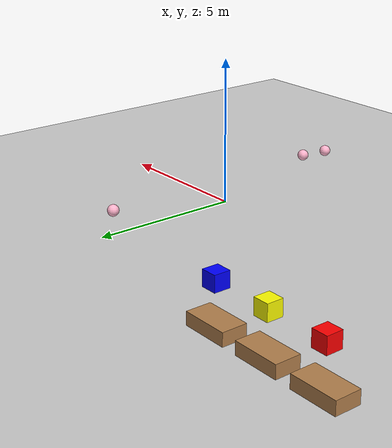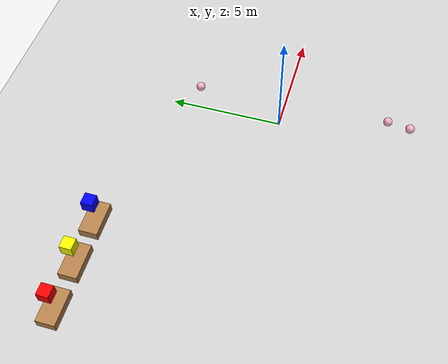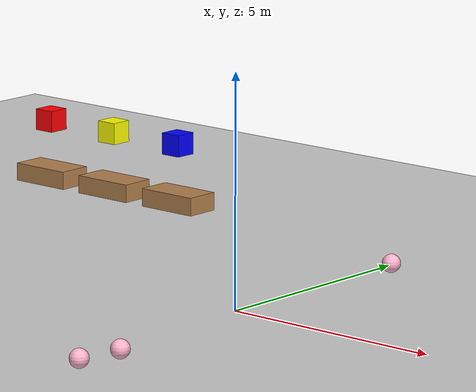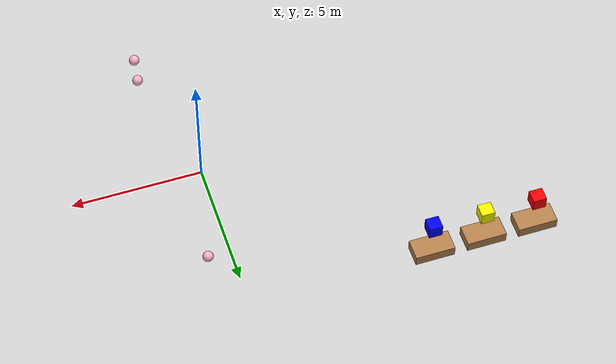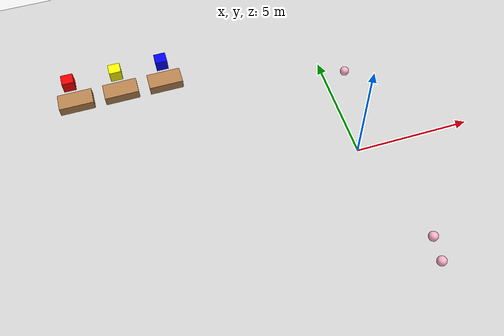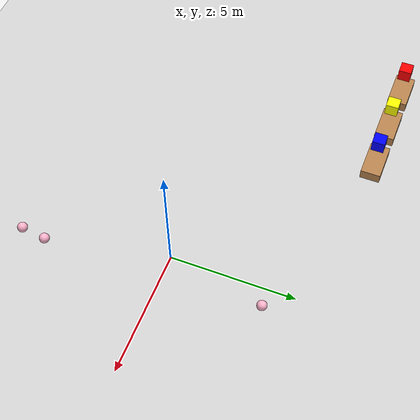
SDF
<?xml version="1.0"?>
<sdf version="1.8">
  <world name="sample_world">

    <!-- Physics settings -->
    <physics name="1ms" type="ode">
      <max_step_size>0.001</max_step_size>
      <real_time_factor>1.0</real_time_factor>
    </physics>

    <!-- Plugin for ROS integration -->
    <plugin filename="gz-sim-physics-system" name="gz::sim::systems::Physics"></plugin>
    <plugin filename="gz-sim-user-commands-system" name="gz::sim::systems::UserCommands"></plugin>
    <plugin filename="gz-sim-scene-broadcaster-system" name="gz::sim::systems::SceneBroadcaster"></plugin>
    <plugin filename="gz-sim-contact-system" name="gz::sim::systems::Contact"></plugin>

    <!-- Sun -->
    <light type="directional" name="sun">
      <cast_shadows>true</cast_shadows>
      <pose>0 0 10 0 0 0</pose>
      <diffuse>0.8 0.8 0.8 1</diffuse>
      <specular>0.2 0.2 0.2 1</specular>
      <attenuation>
        <range>1000</range>
        <constant>0.9</constant>
        <linear>0.01</linear>
        <quadratic>0.001</quadratic>
      </attenuation>
      <direction>-0.5 0.1 -0.9</direction>
    </light>

    <!-- Ground Plane -->
    <model name="ground_plane">
      <static>true</static>
      <link name="link">
        <collision name="collision">
          <geometry>
            <plane>
              <normal>0 0 1</normal>
              <size>100 100</size>
            </plane>
          </geometry>
        </collision>
        <visual name="visual">
          <geometry>
            <plane>
              <normal>0 0 1</normal>
              <size>100 100</size>
            </plane>
          </geometry>
          <material>
            <ambient>0.8 0.8 0.8 1</ambient>
            <diffuse>0.8 0.8 0.8 1</diffuse>
            <specular>0.8 0.8 0.8 1</specular>
          </material>
        </visual>
      </link>
    </model>

    <!-- Tables with boxes -->
    <model name="table_1">
      <static>true</static>
      <pose>-11 6 0 0 0 0</pose>
      <link name="link">
        <collision name="collision">
          <geometry>
            <box>
              <size>1.5 0.8 0.8</size>
            </box>
          </geometry>
        </collision>
        <visual name="visual">
          <geometry>
            <box>
              <size>1.5 0.8 0.8</size>
            </box>
          </geometry>
          <material>
            <ambient>0.7 0.5 0.3 1</ambient>
            <diffuse>0.7 0.5 0.3 1</diffuse>
          </material>
        </visual>
      </link>
    </model>

    <model name="red_box">
      <pose>-11 6 1.5 0 0 0</pose>
      <link name="link">
        <collision name="collision">
          <geometry>
            <box>
              <size>0.5 0.5 0.5</size>
            </box>
          </geometry>
        </collision>
        <visual name="visual">
          <geometry>
            <box>
              <size>0.5 0.5 0.5</size>
            </box>
          </geometry>
          <material>
            <ambient>1 0 0 1</ambient>
            <diffuse>1 0 0 1</diffuse>
          </material>
        </visual>
        <inertial>
          <mass>1.0</mass>
          <inertia>
            <ixx>0.083</ixx>
            <ixy>0.0</ixy>
            <ixz>0.0</ixz>
            <iyy>0.083</iyy>
            <iyz>0.0</iyz>
            <izz>0.083</izz>
          </inertia>
        </inertial>
      </link>
    </model>

    <model name="table_2">
      <static>true</static>
      <pose>-9 6 0 0 0 0</pose>
      <link name="link">
        <collision name="collision">
          <geometry>
            <box>
              <size>1.5 0.8 0.8</size>
            </box>
          </geometry>
        </collision>
        <visual name="visual">
          <geometry>
            <box>
              <size>1.5 0.8 0.8</size>
            </box>
          </geometry>
          <material>
            <ambient>0.7 0.5 0.3 1</ambient>
            <diffuse>0.7 0.5 0.3 1</diffuse>
          </material>
        </visual>
      </link>
    </model>

    <model name="yellow_box">
      <pose>-9 6 1.5 0 0 0</pose>
      <link name="link">
        <collision name="collision">
          <geometry>
            <box>
              <size>0.5 0.5 0.5</size>
            </box>
          </geometry>
        </collision>
        <visual name="visual">
          <geometry>
            <box>
              <size>0.5 0.5 0.5</size>
            </box>
          </geometry>
          <material>
            <ambient>1 1 0 1</ambient>
            <diffuse>1 1 0 1</diffuse>
          </material>
        </visual>
        <inertial>
          <mass>1.0</mass>
          <inertia>
            <ixx>0.083</ixx>
            <ixy>0.0</ixy>
            <ixz>0.0</ixz>
            <iyy>0.083</iyy>
            <iyz>0.0</iyz>
            <izz>0.083</izz>
          </inertia>
        </inertial>
      </link>
    </model>

    <model name="table_3">
      <static>true</static>
      <pose>-7 6 0 0 0 0</pose>
      <link name="link">
        <collision name="collision">
          <geometry>
            <box>
              <size>1.5 0.8 0.8</size>
            </box>
          </geometry>
        </collision>
        <visual name="visual">
          <geometry>
            <box>
              <size>1.5 0.8 0.8</size>
            </box>
          </geometry>
          <material>
            <ambient>0.7 0.5 0.3 1</ambient>
            <diffuse>0.7 0.5 0.3 1</diffuse>
          </material>
        </visual>
      </link>
    </model>

    <model name="blue_box">
      <pose>-7 6 1.5 0 0 0</pose>
      <link name="link">
        <collision name="collision">
          <geometry>
            <box>
              <size>0.5 0.5 0.5</size>
            </box>
          </geometry>
        </collision>
        <visual name="visual">
          <geometry>
            <box>
              <size>0.5 0.5 0.5</size>
            </box>
          </geometry>
          <material>
            <ambient>0 0 1 1</ambient>
            <diffuse>0 0 1 1</diffuse>
          </material>
        </visual>
        <inertial>
          <mass>1.0</mass>
          <inertia>
            <ixx>0.083</ixx>
            <ixy>0.0</ixy>
            <ixz>0.0</ixz>
            <iyy>0.083</iyy>
            <iyz>0.0</iyz>
            <izz>0.083</izz>
          </inertia>
        </inertial>
      </link>
    </model>

    <!-- Pink balls scattered around -->
    <model name="ball_1">
      <static>true</static>
      <pose>1.16 -4.72 0.4 0 0 0</pose>
      <link name="link">
        <collision name="collision">
          <geometry>
            <sphere>
              <radius>0.2</radius>
            </sphere>
          </geometry>
        </collision>
        <visual name="visual">
          <geometry>
            <sphere>
              <radius>0.2</radius>
            </sphere>
          </geometry>
          <material>
            <ambient>1 0.7 0.8 1</ambient>
            <diffuse>1 0.7 0.8 1</diffuse>
          </material>
        </visual>
      </link>
    </model>

    <model name="ball_2">
      <static>true</static>
      <pose>1.02 -5.73 0.4 0 0 0</pose>
      <link name="link">
        <collision name="collision">
          <geometry>
            <sphere>
              <radius>0.2</radius>
            </sphere>
          </geometry>
        </collision>
        <visual name="visual">
          <geometry>
            <sphere>
              <radius>0.2</radius>
            </sphere>
          </geometry>
          <material>
            <ambient>1 0.7 0.8 1</ambient>
            <diffuse>1 0.7 0.8 1</diffuse>
          </material>
        </visual>
      </link>
    </model>

    <model name="ball_3">
      <static>true</static>
      <pose>0.89 3.98 0.4 0 0 0</pose>
      <link name="link">
        <collision name="collision">
          <geometry>
            <sphere>
              <radius>0.2</radius>
            </sphere>
          </geometry>
        </collision>
        <visual name="visual">
          <geometry>
            <sphere>
              <radius>0.2</radius>
            </sphere>
          </geometry>
          <material>
            <ambient>1 0.7 0.8 1</ambient>
            <diffuse>1 0.7 0.8 1</diffuse>
          </material>
        </visual>
      </link>
    </model>

  </world>
</sdf>
